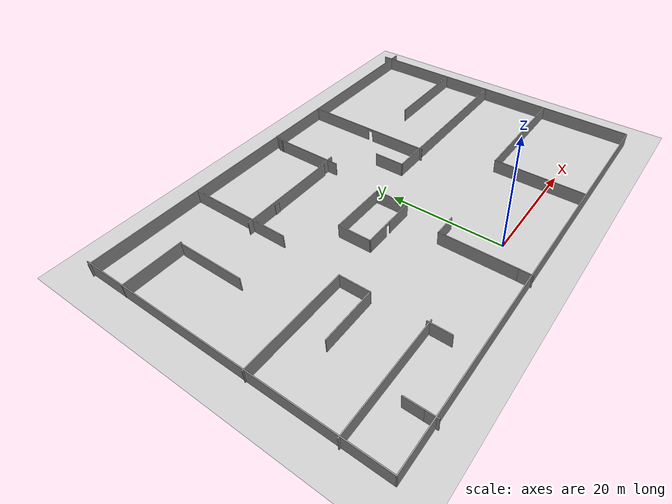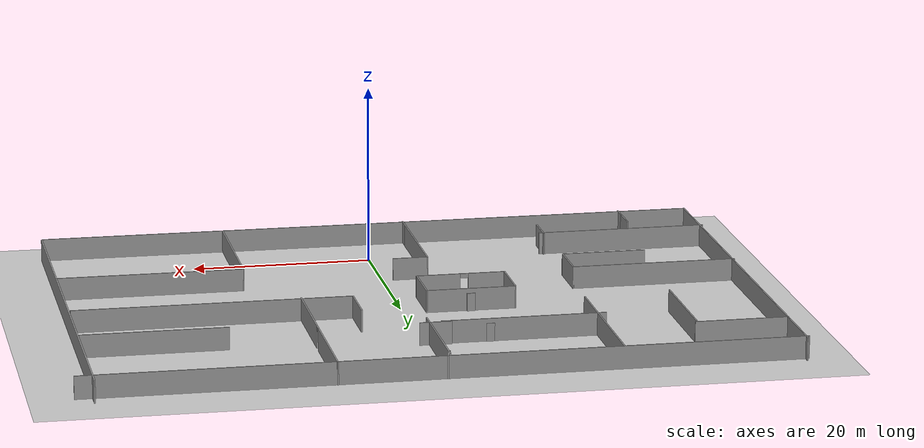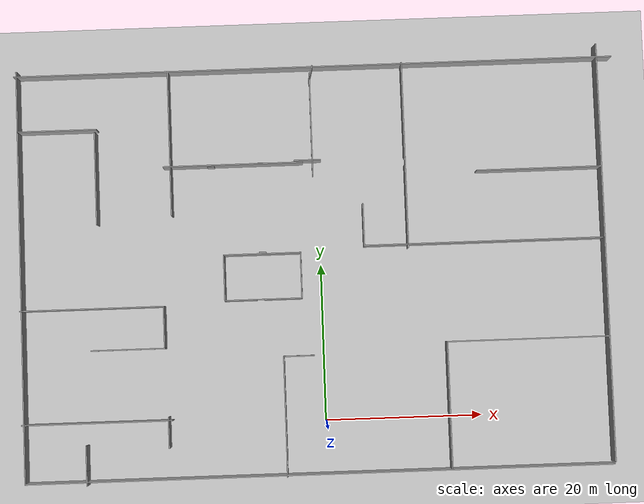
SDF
<sdf version="1.7">
 <world name="default">
  <light name="sun" type="directional">
   <pose>0 0 10 0 -0 0</pose>
   <diffuse>0.8 0.8 0.8 1</diffuse>
   <specular>0.2 0.2 0.2 1</specular>
   <attenuation>
    <range>1000</range>
    <constant>0.9</constant>
    <linear>0.01</linear>
    <quadratic>0.001</quadratic>
   </attenuation>
   <direction>-0.5 0.1 -0.9</direction>
   <spot><inner_angle>0</inner_angle><outer_angle>0</outer_angle><falloff>0</falloff></spot>
  </light>
  <model name="ground_plane">
   <static>1</static>
   <link name="link">
    <collision name="collision">
     <geometry><plane><normal>0 0 1</normal><size>100 100</size></plane></geometry>
     <surface><friction><ode><mu>100</mu><mu2>50</mu2></ode></friction></surface>
    </collision>
    <visual name="visual">
     <cast_shadows>0</cast_shadows>
     <geometry><plane><normal>0 0 1</normal><size>100 100</size></plane></geometry>
     <material>
      <script><uri>file://media/materials/scripts/gazebo.material</uri><name>Gazebo/Grey</name></script>
     </material>
    </visual>
   </link>
  </model>
  <gravity>0 0 -9.8</gravity>
  <magnetic_field>6e-06 2.3e-05 -4.2e-05</magnetic_field>
  <atmosphere type="adiabatic"/>
  <physics type="ode">
   <max_step_size>0.001</max_step_size>
   <real_time_factor>1</real_time_factor>
   <real_time_update_rate>1000</real_time_update_rate>
  </physics>
  <scene><ambient>0.4 0.4 0.4 1</ambient><background>0.7 0.7 0.7 1</background><shadows>1</shadows></scene>
  <audio><device>default</device></audio>
  <spherical_coordinates>
   <surface_model>EARTH_WGS84</surface_model>
   <latitude_deg>0</latitude_deg>
   <longitude_deg>0</longitude_deg>
   <elevation>0</elevation>
   <heading_deg>0</heading_deg>
  </spherical_coordinates>
  <model name="75X53_demo_1">
   <pose>-0.199516 20.0597 0 0 -0 0</pose>
   <link name="Door_1">
    <collision name="Door_1_Collision">
     <geometry><box><size>0.9 0.17 2</size></box></geometry>
     <pose>0 0 1 0 -0 0</pose>
    </collision>
    <visual name="Door_1_Visual">
     <pose>0 0 1 0 -0 0</pose>
     <geometry><box><size>0.9 0.17 2</size></box></geometry>
     <material>
      <script><uri>file://media/materials/scripts/gazebo.material</uri><name>Gazebo/Grey</name></script>
     </material>
    </visual>
    <pose>-13.5693 13.0905 0 0 -0 0</pose>
   </link>
   <link name="Door_2">
    <collision name="Door_2_Collision">
     <geometry><box><size>0.9 0.17 2</size></box></geometry>
     <pose>0 0 1 0 -0 0</pose>
    </collision>
    <visual name="Door_2_Visual">
     <pose>0 0 1 0 -0 0</pose>
     <geometry><box><size>0.9 0.17 2</size></box></geometry>
     <material>
      <script><uri>file://media/materials/scripts/gazebo.material</uri><name>Gazebo/Grey</name></script>
     </material>
    </visual>
    <pose>-7.05174 13.2541 0 0 -0 0</pose>
   </link>
   <link name="Door_4">
    <collision name="Door_4_Collision">
     <geometry><box><size>0.9 0.17 2</size></box></geometry>
     <pose>0 0 1 0 -0 0</pose>
    </collision>
    <visual name="Door_4_Visual">
     <pose>0 0 1 0 -0 0</pose>
     <geometry><box><size>0.9 0.17 2</size></box></geometry>
     <material>
      <script><uri>file://media/materials/scripts/gazebo.material</uri><name>Gazebo/Grey</name></script>
     </material>
    </visual>
    <pose>-7.2564 1.75676 0 0 -0 0</pose>
   </link>
   <link name="Wall_11">
    <collision name="Wall_11_Collision">
     <geometry><box><size>75 0.15 2.5</size></box></geometry>
     <pose>0 0 1.25 0 -0 0</pose>
    </collision>
    <visual name="Wall_11_Visual">
     <pose>0 0 1.25 0 -0 0</pose>
     <geometry><box><size>75 0.15 2.5</size></box></geometry>
     <material>
      <script><uri>file://media/materials/scripts/gazebo.material</uri><name>Gazebo/Grey</name></script>
      <ambient>1 1 1 1</ambient>
     </material>
     <meta><layer>0</layer></meta>
    </visual>
    <pose>-0.856337 -26.7324 0 0 -0 0</pose>
   </link>
   <link name="Wall_17">
    <collision name="Wall_17_Collision">
     <geometry><box><size>53 0.15 2.5</size></box></geometry>
     <pose>0 0 1.25 0 -0 0</pose>
    </collision>
    <visual name="Wall_17_Visual">
     <pose>0 0 1.25 0 -0 0</pose>
     <geometry><box><size>53 0.15 2.5</size></box></geometry>
     <material>
      <script><uri>file://media/materials/scripts/gazebo.material</uri><name>Gazebo/Grey</name></script>
      <ambient>1 1 1 1</ambient>
     </material>
     <meta><layer>0</layer></meta>
    </visual>
    <pose>-38.2813 -0.30743 0 0 -0 1.5708</pose>
   </link>
   <link name="Wall_20">
    <collision name="Wall_20_Collision">
     <geometry><box><size>77.25 0.15 2.5</size></box></geometry>
     <pose>0 0 1.25 0 -0 0</pose>
    </collision>
    <visual name="Wall_20_Visual">
     <pose>0 0 1.25 0 -0 0</pose>
     <geometry><box><size>77.25 0.15 2.5</size></box></geometry>
     <material>
      <script><uri>file://media/materials/scripts/gazebo.material</uri><name>Gazebo/Grey</name></script>
      <ambient>1 1 1 1</ambient>
     </material>
     <meta><layer>0</layer></meta>
    </visual>
    <pose>2e-06 25.5106 0 0 -0 0</pose>
   </link>
   <link name="Wall_22">
    <collision name="Wall_22_Collision">
     <geometry><box><size>53.75 0.15 2.5</size></box></geometry>
     <pose>0 0 1.25 0 -0 0</pose>
    </collision>
    <visual name="Wall_22_Visual">
     <pose>0 0 1.25 0 -0 0</pose>
     <geometry><box><size>53.75 0.15 2.5</size></box></geometry>
     <material>
      <script><uri>file://media/materials/scripts/gazebo.material</uri><name>Gazebo/Grey</name></script>
      <ambient>1 1 1 1</ambient>
     </material>
     <meta><layer>0</layer></meta>
    </visual>
    <pose>36.6928 0.333705 0 0 -0 1.5708</pose>
   </link>
   <link name="Wall_24">
    <collision name="Wall_24_Collision">
     <geometry><box><size>10.25 0.15 2.5</size></box></geometry>
     <pose>0 0 1.25 0 -0 0</pose>
    </collision>
    <visual name="Wall_24_Visual">
     <pose>0 0 1.25 0 -0 0</pose>
     <geometry><box><size>10.25 0.15 2.5</size></box></geometry>
     <material>
      <script><uri>file://media/materials/scripts/gazebo.material</uri><name>Gazebo/Grey</name></script>
      <ambient>1 1 1 1</ambient>
     </material>
     <meta><layer>0</layer></meta>
    </visual>
    <pose>-33.2525 18.3328 0 0 -0 0</pose>
   </link>
   <link name="Wall_26">
    <collision name="Wall_26_Collision">
     <geometry><box><size>18.75 0.15 2.5</size></box></geometry>
     <pose>0 0 1.25 0 -0 0</pose>
    </collision>
    <visual name="Wall_26_Visual">
     <pose>0 0 1.25 0 -0 0</pose>
     <geometry><box><size>18.75 0.15 2.5</size></box></geometry>
     <material>
      <script><uri>file://media/materials/scripts/gazebo.material</uri><name>Gazebo/Grey</name></script>
      <ambient>1 1 1 1</ambient>
     </material>
     <meta><layer>0</layer></meta>
    </visual>
    <pose>-18.7493 16.2106 0 0 -0 -1.5708</pose>
   </link>
   <link name="Wall_28">
    <collision name="Wall_28_Collision">
     <geometry><box><size>19.25 0.15 2.5</size></box></geometry>
     <pose>0 0 1.25 0 -0 0</pose>
    </collision>
    <visual name="Wall_28_Visual">
     <pose>0 0 1.25 0 -0 0</pose>
     <geometry><box><size>19.25 0.15 2.5</size></box></geometry>
     <material>
      <script><uri>file://media/materials/scripts/gazebo.material</uri><name>Gazebo/Grey</name></script>
      <ambient>1 1 1 1</ambient>
     </material>
     <meta><layer>0</layer></meta>
    </visual>
    <pose>-29 -19.2885 0 0 -0 0</pose>
   </link>
   <link name="Wall_30">
    <collision name="Wall_30_Collision">
     <geometry><box><size>2 0.15 2.5</size></box></geometry>
     <pose>0 0 1.25 0 -0 0</pose>
    </collision>
    <visual name="Wall_30_Visual">
     <pose>0 0 1.25 0 -0 0</pose>
     <geometry><box><size>2 0.15 2.5</size></box></geometry>
     <material>
      <script><uri>file://media/materials/scripts/gazebo.material</uri><name>Gazebo/Grey</name></script>
      <ambient>1 1 1 1</ambient>
     </material>
     <meta><layer>0</layer></meta>
    </visual>
    <pose>-30.4462 -26.2087 0 0 -0 1.5708</pose>
   </link>
   <link name="Wall_32">
    <collision name="Wall_32_Collision">
     <geometry><box><size>3.25 0.15 2.5</size></box></geometry>
     <pose>0 0 1.25 0 -0 0</pose>
    </collision>
    <visual name="Wall_32_Visual">
     <pose>0 0 1.25 0 -0 0</pose>
     <geometry><box><size>3.25 0.15 2.5</size></box></geometry>
     <material>
      <script><uri>file://media/materials/scripts/gazebo.material</uri><name>Gazebo/Grey</name></script>
      <ambient>1 1 1 1</ambient>
     </material>
     <meta><layer>0</layer></meta>
    </visual>
    <pose>-30.4462 -23.7337 0 0 -0 1.5708</pose>
   </link>
   <link name="Wall_34">
    <collision name="Wall_34_Collision">
     <geometry><box><size>18.5 0.15 2.5</size></box></geometry>
     <pose>0 0 1.25 0 -0 0</pose>
    </collision>
    <visual name="Wall_34_Visual">
     <pose>0 0 1.25 0 -0 0</pose>
     <geometry><box><size>18.5 0.15 2.5</size></box></geometry>
     <material>
      <script><uri>file://media/materials/scripts/gazebo.material</uri><name>Gazebo/Grey</name></script>
      <ambient>1 1 1 1</ambient>
     </material>
     <meta><layer>0</layer></meta>
    </visual>
    <pose>-29.2879 -4.75833 0 0 -0 0</pose>
   </link>
   <link name="Wall_35">
    <collision name="Wall_35_Collision">
     <geometry><box><size>5.5 0.15 2.5</size></box></geometry>
     <pose>0 0 1.25 0 -0 0</pose>
    </collision>
    <visual name="Wall_35_Visual">
     <pose>0 0 1.25 0 -0 0</pose>
     <geometry><box><size>5.5 0.15 2.5</size></box></geometry>
     <material>
      <script><uri>file://media/materials/scripts/gazebo.material</uri><name>Gazebo/Grey</name></script>
      <ambient>1 1 1 1</ambient>
     </material>
     <meta><layer>0</layer></meta>
    </visual>
    <pose>-20.1129 -7.43333 0 0 -0 -1.5708</pose>
   </link>
   <link name="Wall_36">
    <collision name="Wall_36_Collision">
     <geometry><box><size>9.5 0.15 2.5</size></box></geometry>
     <pose>0 0 1.25 0 -0 0</pose>
    </collision>
    <visual name="Wall_36_Visual">
     <pose>0 0 1.25 0 -0 0</pose>
     <geometry><box><size>9.5 0.15 2.5</size></box></geometry>
     <material>
      <script><uri>file://media/materials/scripts/gazebo.material</uri><name>Gazebo/Grey</name></script>
      <ambient>1 1 1 1</ambient>
     </material>
     <meta><layer>0</layer></meta>
    </visual>
    <pose>-24.7879 -10.1083 0 0 -0 3.14159</pose>
   </link>
   <link name="Wall_38">
    <collision name="Wall_38_Collision">
     <geometry><box><size>4 0.15 2.5</size></box></geometry>
     <pose>0 0 1.25 0 -0 0</pose>
    </collision>
    <visual name="Wall_38_Visual">
     <pose>0 0 1.25 0 -0 0</pose>
     <geometry><box><size>4 0.15 2.5</size></box></geometry>
     <material>
      <script><uri>file://media/materials/scripts/gazebo.material</uri><name>Gazebo/Grey</name></script>
      <ambient>1 1 1 1</ambient>
     </material>
     <meta><layer>0</layer></meta>
    </visual>
    <pose>-19.8815 -20.8347 0 0 -0 -1.5708</pose>
   </link>
   <link name="Wall_40">
    <collision name="Wall_40_Collision">
     <geometry><box><size>16 0.15 2.5</size></box></geometry>
     <pose>0 0 1.25 0 -0 0</pose>
    </collision>
    <visual name="Wall_40_Visual">
     <pose>0 0 1.25 0 -0 0</pose>
     <geometry><box><size>16 0.15 2.5</size></box></geometry>
     <material>
      <script><uri>file://media/materials/scripts/gazebo.material</uri><name>Gazebo/Grey</name></script>
      <ambient>1 1 1 1</ambient>
     </material>
     <meta><layer>0</layer></meta>
    </visual>
    <pose>28.6363 11.3078 0 0 -0 3.14159</pose>
   </link>
   <link name="Wall_42">
    <collision name="Wall_42_Collision">
     <geometry><box><size>13.25 0.15 2.5</size></box></geometry>
     <pose>0 0 1.25 0 -0 0</pose>
    </collision>
    <visual name="Wall_42_Visual">
     <pose>0 0 1.25 0 -0 0</pose>
     <geometry><box><size>13.25 0.15 2.5</size></box></geometry>
     <material>
      <script><uri>file://media/materials/scripts/gazebo.material</uri><name>Gazebo/Grey</name></script>
      <ambient>1 1 1 1</ambient>
     </material>
     <meta><layer>0</layer></meta>
    </visual>
    <pose>-0.457412 18.1018 0 0 -0 -1.5708</pose>
   </link>
   <link name="Wall_44">
    <collision name="Wall_44_Collision">
     <geometry><box><size>13.75 0.15 2.5</size></box></geometry>
     <pose>0 0 1.25 0 -0 0</pose>
    </collision>
    <visual name="Wall_44_Visual">
     <pose>0 0 1.25 0 -0 0</pose>
     <geometry><box><size>13.75 0.15 2.5</size></box></geometry>
     <material>
      <script><uri>file://media/materials/scripts/gazebo.material</uri><name>Gazebo/Grey</name></script>
      <ambient>1 1 1 1</ambient>
     </material>
     <meta><layer>0</layer></meta>
    </visual>
    <pose>-4.97714 -18.4805 0 0 -0 1.5708</pose>
   </link>
   <link name="Wall_45">
    <collision name="Wall_45_Collision">
     <geometry><box><size>4 0.15 2.5</size></box></geometry>
     <pose>0 0 1.25 0 -0 0</pose>
    </collision>
    <visual name="Wall_45_Visual">
     <pose>0 0 1.25 0 -0 0</pose>
     <geometry><box><size>4 0.15 2.5</size></box></geometry>
     <material>
      <script><uri>file://media/materials/scripts/gazebo.material</uri><name>Gazebo/Grey</name></script>
      <ambient>1 1 1 1</ambient>
     </material>
     <meta><layer>0</layer></meta>
    </visual>
    <pose>-3.05214 -11.6805 0 0 -0 0</pose>
   </link>
   <link name="Wall_47">
    <collision name="Wall_47_Collision">
     <geometry><box><size>2.25 0.15 2.5</size></box></geometry>
     <pose>0 0 1.25 0 -0 0</pose>
    </collision>
    <visual name="Wall_47_Visual">
     <pose>0 0 1.25 0 -0 0</pose>
     <geometry><box><size>2.25 0.15 2.5</size></box></geometry>
     <material>
      <script><uri>file://media/materials/scripts/gazebo.material</uri><name>Gazebo/Grey</name></script>
      <ambient>1 1 1 1</ambient>
     </material>
     <meta><layer>0</layer></meta>
    </visual>
    <pose>-4.99806 -25.8678 0 0 -0 -1.5708</pose>
   </link>
   <link name="Wall_49">
    <collision name="Wall_49_Collision">
     <geometry><box><size>16.25 0.15 2.5</size></box></geometry>
     <pose>0 0 1.25 0 -0 0</pose>
    </collision>
    <visual name="Wall_49_Visual">
     <pose>0 0 1.25 0 -0 0</pose>
     <geometry><box><size>16.25 0.15 2.5</size></box></geometry>
     <material>
      <script><uri>file://media/materials/scripts/gazebo.material</uri><name>Gazebo/Grey</name></script>
      <ambient>1 1 1 1</ambient>
     </material>
     <meta><layer>0</layer></meta>
    </visual>
    <pose>15.9629 -18.5766 0 0 -0 1.5708</pose>
   </link>
   <link name="Wall_50">
    <collision name="Wall_50_Collision">
     <geometry><box><size>20.75 0.15 2.5</size></box></geometry>
     <pose>0 0 1.25 0 -0 0</pose>
    </collision>
    <visual name="Wall_50_Visual">
     <pose>0 0 1.25 0 -0 0</pose>
     <geometry><box><size>20.75 0.15 2.5</size></box></geometry>
     <material>
      <script><uri>file://media/materials/scripts/gazebo.material</uri><name>Gazebo/Grey</name></script>
      <ambient>1 1 1 1</ambient>
     </material>
     <meta><layer>0</layer></meta>
    </visual>
    <pose>26.2629 -10.5266 0 0 -0 0</pose>
   </link>
   <link name="Wall_52">
    <collision name="Wall_52_Collision">
     <geometry><box><size>30.75 0.15 2.5</size></box></geometry>
     <pose>0 0 1.25 0 -0 0</pose>
    </collision>
    <visual name="Wall_52_Visual">
     <pose>0 0 1.25 0 -0 0</pose>
     <geometry><box><size>30.75 0.15 2.5</size></box></geometry>
     <material>
      <script><uri>file://media/materials/scripts/gazebo.material</uri><name>Gazebo/Grey</name></script>
      <ambient>1 1 1 1</ambient>
     </material>
     <meta><layer>0</layer></meta>
    </visual>
    <pose>21.134 2.13946 0 0 -0 3.14159</pose>
   </link>
   <link name="Wall_53">
    <collision name="Wall_53_Collision">
     <geometry><box><size>5.5 0.15 2.5</size></box></geometry>
     <pose>0 0 1.25 0 -0 0</pose>
    </collision>
    <visual name="Wall_53_Visual">
     <pose>0 0 1.25 0 -0 0</pose>
     <geometry><box><size>5.5 0.15 2.5</size></box></geometry>
     <material>
      <script><uri>file://media/materials/scripts/gazebo.material</uri><name>Gazebo/Grey</name></script>
      <ambient>1 1 1 1</ambient>
     </material>
     <meta><layer>0</layer></meta>
    </visual>
    <pose>5.83405 4.81447 0 0 -0 1.5708</pose>
   </link>
   <link name="Wall_55">
    <pose>11.4679 13.674 0 0 -0 -1.5708</pose>
    <visual name="Wall_55_Visual_0">
     <pose>-5.83836 0 1.25 0 -0 0</pose>
     <geometry><box><size>12.3233 0.15 2.5</size></box></geometry>
     <material>
      <script><uri>file://media/materials/scripts/gazebo.material</uri><name>Gazebo/Grey</name></script>
      <ambient>1 1 1 1</ambient>
     </material>
     <meta><layer>0</layer></meta>
    </visual>
    <collision name="Wall_55_Collision_0">
     <geometry><box><size>12.3233 0.15 2.5</size></box></geometry>
     <pose>-5.83836 0 1.25 0 -0 0</pose>
    </collision>
    <visual name="Wall_55_Visual_1">
     <pose>6.61164 0 1.25 0 -0 0</pose>
     <geometry><box><size>10.7767 0.15 2.5</size></box></geometry>
     <material>
      <script><uri>file://media/materials/scripts/gazebo.material</uri><name>Gazebo/Grey</name></script>
      <ambient>1 1 1 1</ambient>
     </material>
     <meta><layer>0</layer></meta>
    </visual>
    <collision name="Wall_55_Collision_1">
     <geometry><box><size>10.7767 0.15 2.5</size></box></geometry>
     <pose>6.61164 0 1.25 0 -0 0</pose>
    </collision>
    <visual name="Wall_55_Visual_2">
     <pose>0.773289 0 2.25 0 -0 0</pose>
     <geometry><box><size>0.9 0.15 0.5</size></box></geometry>
     <material>
      <script><uri>file://media/materials/scripts/gazebo.material</uri><name>Gazebo/Grey</name></script>
      <ambient>1 1 1 1</ambient>
     </material>
     <meta><layer>0</layer></meta>
    </visual>
    <collision name="Wall_55_Collision_2">
     <geometry><box><size>0.9 0.15 0.5</size></box></geometry>
     <pose>0.773289 0 2.25 0 -0 0</pose>
    </collision>
   </link>
   <link name="Wall_57">
    <collision name="Wall_57_Collision">
     <geometry><box><size>12 0.15 2.5</size></box></geometry>
     <pose>0 0 1.25 0 -0 0</pose>
    </collision>
    <visual name="Wall_57_Visual">
     <pose>0 0 1.25 0 -0 0</pose>
     <geometry><box><size>12 0.15 2.5</size></box></geometry>
     <material>
      <script><uri>file://media/materials/scripts/gazebo.material</uri><name>Gazebo/Grey</name></script>
      <ambient>1 1 1 1</ambient>
     </material>
     <meta><layer>0</layer></meta>
    </visual>
    <pose>-28.3716 12.0271 0 0 -0 -1.5708</pose>
   </link>
   <link name="Wall_59">
    <collision name="Wall_59_Collision">
     <geometry><box><size>18 0.15 2.5</size></box></geometry>
     <pose>0 0 1.25 0 -0 0</pose>
    </collision>
    <visual name="Wall_59_Visual">
     <pose>0 0 1.25 0 -0 0</pose>
     <geometry><box><size>18 0.15 2.5</size></box></geometry>
     <material>
      <script><uri>file://media/materials/scripts/gazebo.material</uri><name>Gazebo/Grey</name></script>
      <ambient>1 1 1 1</ambient>
     </material>
     <meta><layer>0</layer></meta>
    </visual>
    <pose>-10.6999 13.1696 0 0 -0 0</pose>
   </link>
   <link name="Wall_61">
    <collision name="Wall_61_Collision">
     <geometry><box><size>3.5 0.15 2.5</size></box></geometry>
     <pose>0 0 1.25 0 -0 0</pose>
    </collision>
    <visual name="Wall_61_Visual">
     <pose>0 0 1.25 0 -0 0</pose>
     <geometry><box><size>3.5 0.15 2.5</size></box></geometry>
     <material>
      <script><uri>file://media/materials/scripts/gazebo.material</uri><name>Gazebo/Grey</name></script>
      <ambient>1 1 1 1</ambient>
     </material>
     <meta><layer>0</layer></meta>
    </visual>
    <pose>-1.09242 13.4178 0 0 -0 0</pose>
   </link>
   <link name="Wall_63">
    <collision name="Wall_63_Collision">
     <geometry><box><size>2 0.15 2.5</size></box></geometry>
     <pose>0 0 1.25 0 -0 0</pose>
    </collision>
    <visual name="Wall_63_Visual">
     <pose>0 0 1.25 0 -0 0</pose>
     <geometry><box><size>2 0.15 2.5</size></box></geometry>
     <material>
      <script><uri>file://media/materials/scripts/gazebo.material</uri><name>Gazebo/Grey</name></script>
      <ambient>1 1 1 1</ambient>
     </material>
     <meta><layer>0</layer></meta>
    </visual>
    <pose>-0.30712 24.7279 0 0 -0 1.309</pose>
   </link>
   <link name="Wall_65">
    <collision name="Wall_65_Collision">
     <geometry><box><size>10 0.15 2.5</size></box></geometry>
     <pose>0 0 1.25 0 -0 0</pose>
    </collision>
    <visual name="Wall_65_Visual">
     <pose>0 0 1.25 0 -0 0</pose>
     <geometry><box><size>10 0.15 2.5</size></box></geometry>
     <material>
      <script><uri>file://media/materials/scripts/gazebo.material</uri><name>Gazebo/Grey</name></script>
      <ambient>1 1 1 1</ambient>
     </material>
     <meta><layer>0</layer></meta>
    </visual>
    <pose>-7.30969 1.54032 0 0 -0 0</pose>
   </link>
   <link name="Wall_66">
    <collision name="Wall_66_Collision">
     <geometry><box><size>6 0.15 2.5</size></box></geometry>
     <pose>0 0 1.25 0 -0 0</pose>
    </collision>
    <visual name="Wall_66_Visual">
     <pose>0 0 1.25 0 -0 0</pose>
     <geometry><box><size>6 0.15 2.5</size></box></geometry>
     <material>
      <script><uri>file://media/materials/scripts/gazebo.material</uri><name>Gazebo/Grey</name></script>
      <ambient>1 1 1 1</ambient>
     </material>
     <meta><layer>0</layer></meta>
    </visual>
    <pose>-2.38469 -1.38468 0 0 -0 -1.5708</pose>
   </link>
   <link name="Wall_67">
    <pose>-7.30969 -4.30968 0 0 -0 3.14159</pose>
    <visual name="Wall_67_Visual_0">
     <pose>-2.5352 0 1.25 0 -0 0</pose>
     <geometry><box><size>4.9296 0.15 2.5</size></box></geometry>
     <material>
      <script><uri>file://media/materials/scripts/gazebo.material</uri><name>Gazebo/Grey</name></script>
      <ambient>1 1 1 1</ambient>
     </material>
     <meta><layer>0</layer></meta>
    </visual>
    <collision name="Wall_67_Collision_0">
     <geometry><box><size>4.9296 0.15 2.5</size></box></geometry>
     <pose>-2.5352 0 1.25 0 -0 0</pose>
    </collision>
    <visual name="Wall_67_Visual_1">
     <pose>2.9148 0 1.25 0 -0 0</pose>
     <geometry><box><size>4.1704 0.15 2.5</size></box></geometry>
     <material>
      <script><uri>file://media/materials/scripts/gazebo.material</uri><name>Gazebo/Grey</name></script>
      <ambient>1 1 1 1</ambient>
     </material>
     <meta><layer>0</layer></meta>
    </visual>
    <collision name="Wall_67_Collision_1">
     <geometry><box><size>4.1704 0.15 2.5</size></box></geometry>
     <pose>2.9148 0 1.25 0 -0 0</pose>
    </collision>
    <visual name="Wall_67_Visual_2">
     <pose>0.379603 0 2.25 0 -0 0</pose>
     <geometry><box><size>0.9 0.15 0.5</size></box></geometry>
     <material>
      <script><uri>file://media/materials/scripts/gazebo.material</uri><name>Gazebo/Grey</name></script>
      <ambient>1 1 1 1</ambient>
     </material>
     <meta><layer>0</layer></meta>
    </visual>
    <collision name="Wall_67_Collision_2">
     <geometry><box><size>0.9 0.15 0.5</size></box></geometry>
     <pose>0.379603 0 2.25 0 -0 0</pose>
    </collision>
   </link>
   <link name="Wall_68">
    <collision name="Wall_68_Collision">
     <geometry><box><size>6 0.15 2.5</size></box></geometry>
     <pose>0 0 1.25 0 -0 0</pose>
    </collision>
    <visual name="Wall_68_Visual">
     <pose>0 0 1.25 0 -0 0</pose>
     <geometry><box><size>6 0.15 2.5</size></box></geometry>
     <material>
      <script><uri>file://media/materials/scripts/gazebo.material</uri><name>Gazebo/Grey</name></script>
      <ambient>1 1 1 1</ambient>
     </material>
     <meta><layer>0</layer></meta>
    </visual>
    <pose>-12.2347 -1.38468 0 0 -0 1.5708</pose>
   </link>
   <static>1</static>
  </model>
 </world>
</sdf>
